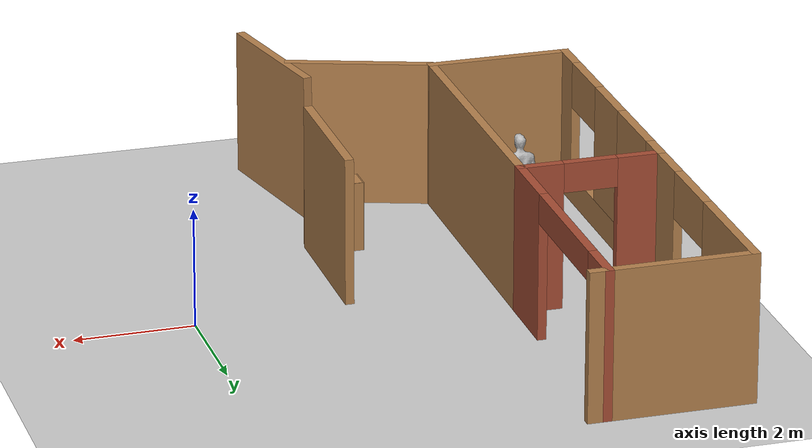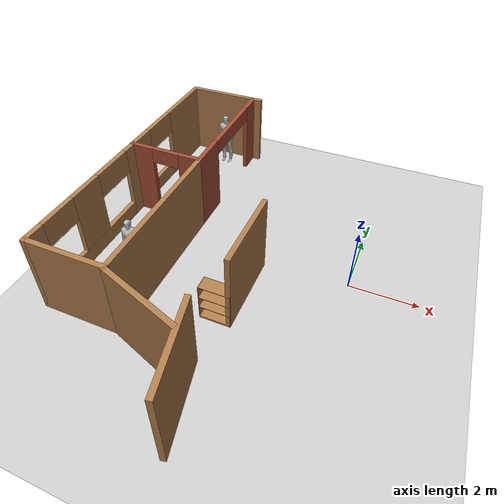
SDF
<sdf version="1.7">
 <world name="default">
  <model name="ground_plane">
   <static>1</static>
   <link name="link">
    <collision name="collision">
     <geometry><plane><normal>0 0 1</normal><size>100 100</size></plane></geometry>
     <surface><friction><ode><mu>100</mu><mu2>50</mu2></ode></friction></surface>
    </collision>
    <visual name="visual">
     <cast_shadows>0</cast_shadows>
     <geometry><plane><normal>0 0 1</normal><size>100 100</size></plane></geometry>
     <material>
      <script><uri>file://media/materials/scripts/gazebo.material</uri><name>Gazebo/Grey</name></script>
     </material>
    </visual>
   </link>
  </model>
  <model name="turtlebot3_house3">
   <link name="Wall_84">
    <pose>-6.2 5.275 0 0 -0 3.14159</pose>
    <visual name="Wall_84_Visual">
     <pose>0 0 1.25 0 -0 0</pose>
     <geometry><box><size>2.75 0.15 2.5</size></box></geometry>
     <material>
      <script><uri>file://media/materials/scripts/gazebo.material</uri><name>Gazebo/Wood</name></script>
      <ambient>1 1 1 1</ambient>
      <diffuse>1 1 1 1</diffuse>
      <specular>0.2 0.2 0.2 1</specular>
      <emissive>0 0 0 1</emissive>
      <shader type="pixel"/>
     </material>
    </visual>
    <collision name="Wall_84_Collision">
     <pose>0 0 1.25 0 -0 0</pose>
     <geometry><box><size>2.75 0.15 2.5</size></box></geometry>
     <surface>
      <friction>
       <ode><mu>1</mu><mu2>1</mu2><fdir1>0 0 0</fdir1><slip1>0</slip1><slip2>0</slip2></ode>
       <torsional>
        <coefficient>1</coefficient>
        <patch_radius>0</patch_radius>
        <surface_radius>0</surface_radius>
        <use_patch_radius>1</use_patch_radius>
        <ode><slip>0</slip></ode>
       </torsional>
      </friction>
      <bounce><restitution_coefficient>0</restitution_coefficient><threshold>1e+06</threshold></bounce>
      <contact>
       <collide_without_contact>0</collide_without_contact>
       <collide_without_contact_bitmask>1</collide_without_contact_bitmask>
       <collide_bitmask>1</collide_bitmask>
       <ode>
        <soft_cfm>0</soft_cfm>
        <soft_erp>0.2</soft_erp>
        <kp>1e+13</kp>
        <kd>1</kd>
        <max_vel>0.01</max_vel>
        <min_depth>0</min_depth>
       </ode>
       <bullet>
        <split_impulse>1</split_impulse>
        <split_impulse_penetration_threshold>-0.01</split_impulse_penetration_threshold>
        <soft_cfm>0</soft_cfm>
        <soft_erp>0.2</soft_erp>
        <kp>1e+13</kp>
        <kd>1</kd>
       </bullet>
      </contact>
     </surface>
    </collision>
   </link>
   <link name="Wall_85">
    <pose>-7.5 3.1 0 0 0 -1.5708</pose>
    <visual name="Wall_85_Visual_3">
     <pose>0.62212 0 2.1 0 -0 0</pose>
     <geometry><box><size>1.332 0.15 0.8</size></box></geometry>
     <material>
      <script><uri>file://media/materials/scripts/gazebo.material</uri><name>Gazebo/Wood</name></script>
      <ambient>1 1 1 1</ambient>
      <diffuse>1 1 1 1</diffuse>
      <specular>0.2 0.2 0.2 1</specular>
      <emissive>0 0 0 1</emissive>
      <shader type="pixel"/>
     </material>
    </visual>
    <visual name="Wall_85_Visual_0">
     <pose>-1.14694 0 1.25 0 -0 0</pose>
     <geometry><box><size>2.20612 0.15 2.5</size></box></geometry>
     <material>
      <script><uri>file://media/materials/scripts/gazebo.material</uri><name>Gazebo/Wood</name></script>
      <ambient>1 1 1 1</ambient>
      <diffuse>1 1 1 1</diffuse>
      <specular>0.2 0.2 0.2 1</specular>
      <emissive>0 0 0 1</emissive>
      <shader type="pixel"/>
     </material>
    </visual>
    <visual name="Wall_85_Visual_1">
     <pose>1.10306 0 0.25 0 -0 0</pose>
     <geometry><box><size>2.29388 0.15 0.5</size></box></geometry>
     <material>
      <script><uri>file://media/materials/scripts/gazebo.material</uri><name>Gazebo/Wood</name></script>
      <ambient>1 1 1 1</ambient>
      <diffuse>1 1 1 1</diffuse>
      <specular>0.2 0.2 0.2 1</specular>
      <emissive>0 0 0 1</emissive>
      <shader type="pixel"/>
     </material>
    </visual>
    <visual name="Wall_85_Visual_2">
     <pose>1.76906 0 1.5 0 -0 0</pose>
     <geometry><box><size>0.96188 0.15 2</size></box></geometry>
     <material>
      <script><uri>file://media/materials/scripts/gazebo.material</uri><name>Gazebo/Wood</name></script>
      <ambient>1 1 1 1</ambient>
      <diffuse>1 1 1 1</diffuse>
      <specular>0.2 0.2 0.2 1</specular>
      <emissive>0 0 0 1</emissive>
      <shader type="pixel"/>
     </material>
    </visual>
    <collision name="Wall_85_Collision_2">
     <pose>1.76906 0 1.5 0 -0 0</pose>
     <geometry><box><size>0.96188 0.15 2</size></box></geometry>
     <surface>
      <friction>
       <ode><mu>1</mu><mu2>1</mu2><fdir1>0 0 0</fdir1><slip1>0</slip1><slip2>0</slip2></ode>
       <torsional>
        <coefficient>1</coefficient>
        <patch_radius>0</patch_radius>
        <surface_radius>0</surface_radius>
        <use_patch_radius>1</use_patch_radius>
        <ode><slip>0</slip></ode>
       </torsional>
      </friction>
      <bounce><restitution_coefficient>0</restitution_coefficient><threshold>1e+06</threshold></bounce>
      <contact>
       <collide_without_contact>0</collide_without_contact>
       <collide_without_contact_bitmask>1</collide_without_contact_bitmask>
       <collide_bitmask>1</collide_bitmask>
       <ode>
        <soft_cfm>0</soft_cfm>
        <soft_erp>0.2</soft_erp>
        <kp>1e+13</kp>
        <kd>1</kd>
        <max_vel>0.01</max_vel>
        <min_depth>0</min_depth>
       </ode>
       <bullet>
        <split_impulse>1</split_impulse>
        <split_impulse_penetration_threshold>-0.01</split_impulse_penetration_threshold>
        <soft_cfm>0</soft_cfm>
        <soft_erp>0.2</soft_erp>
        <kp>1e+13</kp>
        <kd>1</kd>
       </bullet>
      </contact>
     </surface>
    </collision>
    <collision name="Wall_85_Collision_0">
     <pose>-1.14694 0 1.25 0 -0 0</pose>
     <geometry><box><size>2.20612 0.15 2.5</size></box></geometry>
     <surface>
      <friction>
       <ode><mu>1</mu><mu2>1</mu2><fdir1>0 0 0</fdir1><slip1>0</slip1><slip2>0</slip2></ode>
       <torsional>
        <coefficient>1</coefficient>
        <patch_radius>0</patch_radius>
        <surface_radius>0</surface_radius>
        <use_patch_radius>1</use_patch_radius>
        <ode><slip>0</slip></ode>
       </torsional>
      </friction>
      <bounce><restitution_coefficient>0</restitution_coefficient><threshold>1e+06</threshold></bounce>
      <contact>
       <collide_without_contact>0</collide_without_contact>
       <collide_without_contact_bitmask>1</collide_without_contact_bitmask>
       <collide_bitmask>1</collide_bitmask>
       <ode>
        <soft_cfm>0</soft_cfm>
        <soft_erp>0.2</soft_erp>
        <kp>1e+13</kp>
        <kd>1</kd>
        <max_vel>0.01</max_vel>
        <min_depth>0</min_depth>
       </ode>
       <bullet>
        <split_impulse>1</split_impulse>
        <split_impulse_penetration_threshold>-0.01</split_impulse_penetration_threshold>
        <soft_cfm>0</soft_cfm>
        <soft_erp>0.2</soft_erp>
        <kp>1e+13</kp>
        <kd>1</kd>
       </bullet>
      </contact>
     </surface>
    </collision>
    <collision name="Wall_85_Collision_3">
     <pose>0.62212 0 2.1 0 -0 0</pose>
     <geometry><box><size>1.332 0.15 0.8</size></box></geometry>
     <surface>
      <friction>
       <ode><mu>1</mu><mu2>1</mu2><fdir1>0 0 0</fdir1><slip1>0</slip1><slip2>0</slip2></ode>
       <torsional>
        <coefficient>1</coefficient>
        <patch_radius>0</patch_radius>
        <surface_radius>0</surface_radius>
        <use_patch_radius>1</use_patch_radius>
        <ode><slip>0</slip></ode>
       </torsional>
      </friction>
      <bounce><restitution_coefficient>0</restitution_coefficient><threshold>1e+06</threshold></bounce>
      <contact>
       <collide_without_contact>0</collide_without_contact>
       <collide_without_contact_bitmask>1</collide_without_contact_bitmask>
       <collide_bitmask>1</collide_bitmask>
       <ode>
        <soft_cfm>0</soft_cfm>
        <soft_erp>0.2</soft_erp>
        <kp>1e+13</kp>
        <kd>1</kd>
        <max_vel>0.01</max_vel>
        <min_depth>0</min_depth>
       </ode>
       <bullet>
        <split_impulse>1</split_impulse>
        <split_impulse_penetration_threshold>-0.01</split_impulse_penetration_threshold>
        <soft_cfm>0</soft_cfm>
        <soft_erp>0.2</soft_erp>
        <kp>1e+13</kp>
        <kd>1</kd>
       </bullet>
      </contact>
     </surface>
    </collision>
    <collision name="Wall_85_Collision_1">
     <pose>1.10306 0 0.25 0 -0 0</pose>
     <geometry><box><size>2.29388 0.15 0.5</size></box></geometry>
     <surface>
      <friction>
       <ode><mu>1</mu><mu2>1</mu2><fdir1>0 0 0</fdir1><slip1>0</slip1><slip2>0</slip2></ode>
       <torsional>
        <coefficient>1</coefficient>
        <patch_radius>0</patch_radius>
        <surface_radius>0</surface_radius>
        <use_patch_radius>1</use_patch_radius>
        <ode><slip>0</slip></ode>
       </torsional>
      </friction>
      <bounce><restitution_coefficient>0</restitution_coefficient><threshold>1e+06</threshold></bounce>
      <contact>
       <collide_without_contact>0</collide_without_contact>
       <collide_without_contact_bitmask>1</collide_without_contact_bitmask>
       <collide_bitmask>1</collide_bitmask>
       <ode>
        <soft_cfm>0</soft_cfm>
        <soft_erp>0.2</soft_erp>
        <kp>1e+13</kp>
        <kd>1</kd>
        <max_vel>0.01</max_vel>
        <min_depth>0</min_depth>
       </ode>
       <bullet>
        <split_impulse>1</split_impulse>
        <split_impulse_penetration_threshold>-0.01</split_impulse_penetration_threshold>
        <soft_cfm>0</soft_cfm>
        <soft_erp>0.2</soft_erp>
        <kp>1e+13</kp>
        <kd>1</kd>
       </bullet>
      </contact>
     </surface>
    </collision>
   </link>
   <link name="Wall_86">
    <pose>-7.5 -1.5 0 0 0 -1.5708</pose>
    <visual name="Wall_86_Visual_3">
     <pose>2.16098 0 1.5 0 -0 0</pose>
     <geometry><box><size>0.678041 0.15 2</size></box></geometry>
     <material>
      <script><uri>file://media/materials/scripts/gazebo.material</uri><name>Gazebo/Wood</name></script>
      <ambient>1 1 1 1</ambient>
      <diffuse>1 1 1 1</diffuse>
      <specular>0.2 0.2 0.2 1</specular>
      <emissive>0 0 0 1</emissive>
      <shader type="pixel"/>
     </material>
    </visual>
    <visual name="Wall_86_Visual_5">
     <pose>1.22246 0 2.1 0 -0 0</pose>
     <geometry><box><size>1.199 0.15 0.8</size></box></geometry>
     <material>
      <script><uri>file://media/materials/scripts/gazebo.material</uri><name>Gazebo/Wood</name></script>
      <ambient>1 1 1 1</ambient>
      <diffuse>1 1 1 1</diffuse>
      <specular>0.2 0.2 0.2 1</specular>
      <emissive>0 0 0 1</emissive>
      <shader type="pixel"/>
     </material>
    </visual>
    <visual name="Wall_86_Visual_0">
     <pose>-2.21538 0 1.25 0 -0 0</pose>
     <geometry><box><size>0.569241 0.15 2.5</size></box></geometry>
     <material>
      <script><uri>file://media/materials/scripts/gazebo.material</uri><name>Gazebo/Wood</name></script>
      <ambient>1 1 1 1</ambient>
      <diffuse>1 1 1 1</diffuse>
      <specular>0.2 0.2 0.2 1</specular>
      <emissive>0 0 0 1</emissive>
      <shader type="pixel"/>
     </material>
    </visual>
    <visual name="Wall_86_Visual_2">
     <pose>0.0521 0 1.5 0 -0 0</pose>
     <geometry><box><size>1.14172 0.15 2</size></box></geometry>
     <material>
      <script><uri>file://media/materials/scripts/gazebo.material</uri><name>Gazebo/Wood</name></script>
      <ambient>1 1 1 1</ambient>
      <diffuse>1 1 1 1</diffuse>
      <specular>0.2 0.2 0.2 1</specular>
      <emissive>0 0 0 1</emissive>
      <shader type="pixel"/>
     </material>
    </visual>
    <visual name="Wall_86_Visual_4">
     <pose>-1.22476 0 2.1 0 -0 0</pose>
     <geometry><box><size>1.412 0.15 0.8</size></box></geometry>
     <material>
      <script><uri>file://media/materials/scripts/gazebo.material</uri><name>Gazebo/Wood</name></script>
      <ambient>1 1 1 1</ambient>
      <diffuse>1 1 1 1</diffuse>
      <specular>0.2 0.2 0.2 1</specular>
      <emissive>0 0 0 1</emissive>
      <shader type="pixel"/>
     </material>
    </visual>
    <visual name="Wall_86_Visual_1">
     <pose>0.28462 0 0.25 0 -0 0</pose>
     <geometry><box><size>4.43076 0.15 0.5</size></box></geometry>
     <material>
      <script><uri>file://media/materials/scripts/gazebo.material</uri><name>Gazebo/Wood</name></script>
      <ambient>1 1 1 1</ambient>
      <diffuse>1 1 1 1</diffuse>
      <specular>0.2 0.2 0.2 1</specular>
      <emissive>0 0 0 1</emissive>
      <shader type="pixel"/>
     </material>
    </visual>
    <collision name="Wall_86_Collision_3">
     <pose>2.16098 0 1.5 0 -0 0</pose>
     <geometry><box><size>0.678041 0.15 2</size></box></geometry>
     <surface>
      <friction>
       <ode><mu>1</mu><mu2>1</mu2><fdir1>0 0 0</fdir1><slip1>0</slip1><slip2>0</slip2></ode>
       <torsional>
        <coefficient>1</coefficient>
        <patch_radius>0</patch_radius>
        <surface_radius>0</surface_radius>
        <use_patch_radius>1</use_patch_radius>
        <ode><slip>0</slip></ode>
       </torsional>
      </friction>
      <bounce><restitution_coefficient>0</restitution_coefficient><threshold>1e+06</threshold></bounce>
      <contact>
       <collide_without_contact>0</collide_without_contact>
       <collide_without_contact_bitmask>1</collide_without_contact_bitmask>
       <collide_bitmask>1</collide_bitmask>
       <ode>
        <soft_cfm>0</soft_cfm>
        <soft_erp>0.2</soft_erp>
        <kp>1e+13</kp>
        <kd>1</kd>
        <max_vel>0.01</max_vel>
        <min_depth>0</min_depth>
       </ode>
       <bullet>
        <split_impulse>1</split_impulse>
        <split_impulse_penetration_threshold>-0.01</split_impulse_penetration_threshold>
        <soft_cfm>0</soft_cfm>
        <soft_erp>0.2</soft_erp>
        <kp>1e+13</kp>
        <kd>1</kd>
       </bullet>
      </contact>
     </surface>
    </collision>
    <collision name="Wall_86_Collision_4">
     <pose>-1.22476 0 2.1 0 -0 0</pose>
     <geometry><box><size>1.412 0.15 0.8</size></box></geometry>
     <surface>
      <friction>
       <ode><mu>1</mu><mu2>1</mu2><fdir1>0 0 0</fdir1><slip1>0</slip1><slip2>0</slip2></ode>
       <torsional>
        <coefficient>1</coefficient>
        <patch_radius>0</patch_radius>
        <surface_radius>0</surface_radius>
        <use_patch_radius>1</use_patch_radius>
        <ode><slip>0</slip></ode>
       </torsional>
      </friction>
      <bounce><restitution_coefficient>0</restitution_coefficient><threshold>1e+06</threshold></bounce>
      <contact>
       <collide_without_contact>0</collide_without_contact>
       <collide_without_contact_bitmask>1</collide_without_contact_bitmask>
       <collide_bitmask>1</collide_bitmask>
       <ode>
        <soft_cfm>0</soft_cfm>
        <soft_erp>0.2</soft_erp>
        <kp>1e+13</kp>
        <kd>1</kd>
        <max_vel>0.01</max_vel>
        <min_depth>0</min_depth>
       </ode>
       <bullet>
        <split_impulse>1</split_impulse>
        <split_impulse_penetration_threshold>-0.01</split_impulse_penetration_threshold>
        <soft_cfm>0</soft_cfm>
        <soft_erp>0.2</soft_erp>
        <kp>1e+13</kp>
        <kd>1</kd>
       </bullet>
      </contact>
     </surface>
    </collision>
    <collision name="Wall_86_Collision_5">
     <pose>1.22246 0 2.1 0 -0 0</pose>
     <geometry><box><size>1.199 0.15 0.8</size></box></geometry>
     <surface>
      <friction>
       <ode><mu>1</mu><mu2>1</mu2><fdir1>0 0 0</fdir1><slip1>0</slip1><slip2>0</slip2></ode>
       <torsional>
        <coefficient>1</coefficient>
        <patch_radius>0</patch_radius>
        <surface_radius>0</surface_radius>
        <use_patch_radius>1</use_patch_radius>
        <ode><slip>0</slip></ode>
       </torsional>
      </friction>
      <bounce><restitution_coefficient>0</restitution_coefficient><threshold>1e+06</threshold></bounce>
      <contact>
       <collide_without_contact>0</collide_without_contact>
       <collide_without_contact_bitmask>1</collide_without_contact_bitmask>
       <collide_bitmask>1</collide_bitmask>
       <ode>
        <soft_cfm>0</soft_cfm>
        <soft_erp>0.2</soft_erp>
        <kp>1e+13</kp>
        <kd>1</kd>
        <max_vel>0.01</max_vel>
        <min_depth>0</min_depth>
       </ode>
       <bullet>
        <split_impulse>1</split_impulse>
        <split_impulse_penetration_threshold>-0.01</split_impulse_penetration_threshold>
        <soft_cfm>0</soft_cfm>
        <soft_erp>0.2</soft_erp>
        <kp>1e+13</kp>
        <kd>1</kd>
       </bullet>
      </contact>
     </surface>
    </collision>
    <collision name="Wall_86_Collision_2">
     <pose>0.0521 0 1.5 0 -0 0</pose>
     <geometry><box><size>1.14172 0.15 2</size></box></geometry>
     <surface>
      <friction>
       <ode><mu>1</mu><mu2>1</mu2><fdir1>0 0 0</fdir1><slip1>0</slip1><slip2>0</slip2></ode>
       <torsional>
        <coefficient>1</coefficient>
        <patch_radius>0</patch_radius>
        <surface_radius>0</surface_radius>
        <use_patch_radius>1</use_patch_radius>
        <ode><slip>0</slip></ode>
       </torsional>
      </friction>
      <bounce><restitution_coefficient>0</restitution_coefficient><threshold>1e+06</threshold></bounce>
      <contact>
       <collide_without_contact>0</collide_without_contact>
       <collide_without_contact_bitmask>1</collide_without_contact_bitmask>
       <collide_bitmask>1</collide_bitmask>
       <ode>
        <soft_cfm>0</soft_cfm>
        <soft_erp>0.2</soft_erp>
        <kp>1e+13</kp>
        <kd>1</kd>
        <max_vel>0.01</max_vel>
        <min_depth>0</min_depth>
       </ode>
       <bullet>
        <split_impulse>1</split_impulse>
        <split_impulse_penetration_threshold>-0.01</split_impulse_penetration_threshold>
        <soft_cfm>0</soft_cfm>
        <soft_erp>0.2</soft_erp>
        <kp>1e+13</kp>
        <kd>1</kd>
       </bullet>
      </contact>
     </surface>
    </collision>
    <collision name="Wall_86_Collision_1">
     <pose>0.28462 0 0.25 0 -0 0</pose>
     <geometry><box><size>4.43076 0.15 0.5</size></box></geometry>
     <surface>
      <friction>
       <ode><mu>1</mu><mu2>1</mu2><fdir1>0 0 0</fdir1><slip1>0</slip1><slip2>0</slip2></ode>
       <torsional>
        <coefficient>1</coefficient>
        <patch_radius>0</patch_radius>
        <surface_radius>0</surface_radius>
        <use_patch_radius>1</use_patch_radius>
        <ode><slip>0</slip></ode>
       </torsional>
      </friction>
      <bounce><restitution_coefficient>0</restitution_coefficient><threshold>1e+06</threshold></bounce>
      <contact>
       <collide_without_contact>0</collide_without_contact>
       <collide_without_contact_bitmask>1</collide_without_contact_bitmask>
       <collide_bitmask>1</collide_bitmask>
       <ode>
        <soft_cfm>0</soft_cfm>
        <soft_erp>0.2</soft_erp>
        <kp>1e+13</kp>
        <kd>1</kd>
        <max_vel>0.01</max_vel>
        <min_depth>0</min_depth>
       </ode>
       <bullet>
        <split_impulse>1</split_impulse>
        <split_impulse_penetration_threshold>-0.01</split_impulse_penetration_threshold>
        <soft_cfm>0</soft_cfm>
        <soft_erp>0.2</soft_erp>
        <kp>1e+13</kp>
        <kd>1</kd>
       </bullet>
      </contact>
     </surface>
    </collision>
    <collision name="Wall_86_Collision_0">
     <pose>-2.21538 0 1.25 0 -0 0</pose>
     <geometry><box><size>0.569241 0.15 2.5</size></box></geometry>
     <surface>
      <friction>
       <ode><mu>1</mu><mu2>1</mu2><fdir1>0 0 0</fdir1><slip1>0</slip1><slip2>0</slip2></ode>
       <torsional>
        <coefficient>1</coefficient>
        <patch_radius>0</patch_radius>
        <surface_radius>0</surface_radius>
        <use_patch_radius>1</use_patch_radius>
        <ode><slip>0</slip></ode>
       </torsional>
      </friction>
      <bounce><restitution_coefficient>0</restitution_coefficient><threshold>1e+06</threshold></bounce>
      <contact>
       <collide_without_contact>0</collide_without_contact>
       <collide_without_contact_bitmask>1</collide_without_contact_bitmask>
       <collide_bitmask>1</collide_bitmask>
       <ode>
        <soft_cfm>0</soft_cfm>
        <soft_erp>0.2</soft_erp>
        <kp>1e+13</kp>
        <kd>1</kd>
        <max_vel>0.01</max_vel>
        <min_depth>0</min_depth>
       </ode>
       <bullet>
        <split_impulse>1</split_impulse>
        <split_impulse_penetration_threshold>-0.01</split_impulse_penetration_threshold>
        <soft_cfm>0</soft_cfm>
        <soft_erp>0.2</soft_erp>
        <kp>1e+13</kp>
        <kd>1</kd>
       </bullet>
      </contact>
     </surface>
    </collision>
   </link>
   <link name="Wall_87">
    <pose>-6.325 -3.925 0 0 -0 0</pose>
    <visual name="Wall_87_Visual">
     <pose>0 0 1.25 0 -0 0</pose>
     <geometry><box><size>2.5 0.15 2.5</size></box></geometry>
     <material>
      <script><uri>file://media/materials/scripts/gazebo.material</uri><name>Gazebo/Wood</name></script>
      <ambient>1 1 1 1</ambient>
      <diffuse>1 1 1 1</diffuse>
      <specular>0.2 0.2 0.2 1</specular>
      <emissive>0 0 0 1</emissive>
      <shader type="pixel"/>
     </material>
    </visual>
    <collision name="Wall_87_Collision">
     <pose>0 0 1.25 0 -0 0</pose>
     <geometry><box><size>2.5 0.15 2.5</size></box></geometry>
     <surface>
      <friction>
       <ode><mu>1</mu><mu2>1</mu2><fdir1>0 0 0</fdir1><slip1>0</slip1><slip2>0</slip2></ode>
       <torsional>
        <coefficient>1</coefficient>
        <patch_radius>0</patch_radius>
        <surface_radius>0</surface_radius>
        <use_patch_radius>1</use_patch_radius>
        <ode><slip>0</slip></ode>
       </torsional>
      </friction>
      <bounce><restitution_coefficient>0</restitution_coefficient><threshold>1e+06</threshold></bounce>
      <contact>
       <collide_without_contact>0</collide_without_contact>
       <collide_without_contact_bitmask>1</collide_without_contact_bitmask>
       <collide_bitmask>1</collide_bitmask>
       <ode>
        <soft_cfm>0</soft_cfm>
        <soft_erp>0.2</soft_erp>
        <kp>1e+13</kp>
        <kd>1</kd>
        <max_vel>0.01</max_vel>
        <min_depth>0</min_depth>
       </ode>
       <bullet>
        <split_impulse>1</split_impulse>
        <split_impulse_penetration_threshold>-0.01</split_impulse_penetration_threshold>
        <soft_cfm>0</soft_cfm>
        <soft_erp>0.2</soft_erp>
        <kp>1e+13</kp>
        <kd>1</kd>
       </bullet>
      </contact>
     </surface>
    </collision>
   </link>
   <link name="Wall_87_clone">
    <pose>-4.00034 -4.35157 0 0 0 -0.331185</pose>
    <visual name="Wall_87_Visual">
     <pose>0 0 1.25 0 -0 0</pose>
     <geometry><box><size>2.5 0.15 2.5</size></box></geometry>
     <material>
      <script><uri>file://media/materials/scripts/gazebo.material</uri><name>Gazebo/Wood</name></script>
      <ambient>1 1 1 1</ambient>
      <diffuse>1 1 1 1</diffuse>
      <specular>0.2 0.2 0.2 1</specular>
      <emissive>0 0 0 1</emissive>
      <shader type="pixel"/>
     </material>
    </visual>
    <collision name="Wall_87_Collision">
     <pose>0 0 1.25 0 -0 0</pose>
     <geometry><box><size>2.5 0.15 2.5</size></box></geometry>
     <surface>
      <friction>
       <ode><mu>1</mu><mu2>1</mu2><fdir1>0 0 0</fdir1><slip1>0</slip1><slip2>0</slip2></ode>
       <torsional>
        <coefficient>1</coefficient>
        <patch_radius>0</patch_radius>
        <surface_radius>0</surface_radius>
        <use_patch_radius>1</use_patch_radius>
        <ode><slip>0</slip></ode>
       </torsional>
      </friction>
      <bounce><restitution_coefficient>0</restitution_coefficient><threshold>1e+06</threshold></bounce>
      <contact>
       <collide_without_contact>0</collide_without_contact>
       <collide_without_contact_bitmask>1</collide_without_contact_bitmask>
       <collide_bitmask>1</collide_bitmask>
       <ode>
        <soft_cfm>0</soft_cfm>
        <soft_erp>0.2</soft_erp>
        <kp>1e+13</kp>
        <kd>1</kd>
        <max_vel>0.01</max_vel>
        <min_depth>0</min_depth>
       </ode>
       <bullet>
        <split_impulse>1</split_impulse>
        <split_impulse_penetration_threshold>-0.01</split_impulse_penetration_threshold>
        <soft_cfm>0</soft_cfm>
        <soft_erp>0.2</soft_erp>
        <kp>1e+13</kp>
        <kd>1</kd>
       </bullet>
      </contact>
     </surface>
    </collision>
   </link>
   <link name="Wall_87_clone_clone">
    <pose>-2.63211 -1.37717 0 0 0 -1.57423</pose>
    <visual name="Wall_87_Visual">
     <pose>0 0 1.25 0 -0 0</pose>
     <geometry><box><size>2.5 0.15 2.5</size></box></geometry>
     <material>
      <script><uri>file://media/materials/scripts/gazebo.material</uri><name>Gazebo/Wood</name></script>
      <ambient>1 1 1 1</ambient>
      <diffuse>1 1 1 1</diffuse>
      <specular>0.2 0.2 0.2 1</specular>
      <emissive>0 0 0 1</emissive>
      <shader type="pixel"/>
     </material>
    </visual>
    <collision name="Wall_87_Collision">
     <pose>0 0 1.25 0 -0 0</pose>
     <geometry><box><size>2.5 0.15 2.5</size></box></geometry>
     <surface>
      <friction>
       <ode><mu>1</mu><mu2>1</mu2><fdir1>0 0 0</fdir1><slip1>0</slip1><slip2>0</slip2></ode>
       <torsional>
        <coefficient>1</coefficient>
        <patch_radius>0</patch_radius>
        <surface_radius>0</surface_radius>
        <use_patch_radius>1</use_patch_radius>
        <ode><slip>0</slip></ode>
       </torsional>
      </friction>
      <bounce><restitution_coefficient>0</restitution_coefficient><threshold>1e+06</threshold></bounce>
      <contact>
       <collide_without_contact>0</collide_without_contact>
       <collide_without_contact_bitmask>1</collide_without_contact_bitmask>
       <collide_bitmask>1</collide_bitmask>
       <ode>
        <soft_cfm>0</soft_cfm>
        <soft_erp>0.2</soft_erp>
        <kp>1e+13</kp>
        <kd>1</kd>
        <max_vel>0.01</max_vel>
        <min_depth>0</min_depth>
       </ode>
       <bullet>
        <split_impulse>1</split_impulse>
        <split_impulse_penetration_threshold>-0.01</split_impulse_penetration_threshold>
        <soft_cfm>0</soft_cfm>
        <soft_erp>0.2</soft_erp>
        <kp>1e+13</kp>
        <kd>1</kd>
       </bullet>
      </contact>
     </surface>
    </collision>
   </link>
   <link name="Wall_87_clone_clone_0">
    <pose>-2.7265 -5.11897 0 0 0 -1.36485</pose>
    <visual name="Wall_87_Visual">
     <pose>0 0 1.25 0 -0 0</pose>
     <geometry><box><size>2.5 0.15 2.5</size></box></geometry>
     <material>
      <script><uri>file://media/materials/scripts/gazebo.material</uri><name>Gazebo/Wood</name></script>
      <ambient>1 1 1 1</ambient>
      <diffuse>1 1 1 1</diffuse>
      <specular>0.2 0.2 0.2 1</specular>
      <emissive>0 0 0 1</emissive>
      <shader type="pixel"/>
     </material>
    </visual>
    <collision name="Wall_87_Collision">
     <pose>0 0 1.25 0 -0 0</pose>
     <geometry><box><size>2.5 0.15 2.5</size></box></geometry>
     <surface>
      <friction>
       <ode><mu>1</mu><mu2>1</mu2><fdir1>0 0 0</fdir1><slip1>0</slip1><slip2>0</slip2></ode>
       <torsional>
        <coefficient>1</coefficient>
        <patch_radius>0</patch_radius>
        <surface_radius>0</surface_radius>
        <use_patch_radius>1</use_patch_radius>
        <ode><slip>0</slip></ode>
       </torsional>
      </friction>
      <bounce><restitution_coefficient>0</restitution_coefficient><threshold>1e+06</threshold></bounce>
      <contact>
       <collide_without_contact>0</collide_without_contact>
       <collide_without_contact_bitmask>1</collide_without_contact_bitmask>
       <collide_bitmask>1</collide_bitmask>
       <ode>
        <soft_cfm>0</soft_cfm>
        <soft_erp>0.2</soft_erp>
        <kp>1e+13</kp>
        <kd>1</kd>
        <max_vel>0.01</max_vel>
        <min_depth>0</min_depth>
       </ode>
       <bullet>
        <split_impulse>1</split_impulse>
        <split_impulse_penetration_threshold>-0.01</split_impulse_penetration_threshold>
        <soft_cfm>0</soft_cfm>
        <soft_erp>0.2</soft_erp>
        <kp>1e+13</kp>
        <kd>1</kd>
       </bullet>
      </contact>
     </surface>
    </collision>
   </link>
   <link name="Wall_88">
    <pose>-5.15151 -1.49625 0 0 -0 1.5708</pose>
    <visual name="Wall_88_Visual">
     <pose>0 0 1.25 0 -0 0</pose>
     <geometry><box><size>5 0.15 2.5</size></box></geometry>
     <material>
      <script><uri>file://media/materials/scripts/gazebo.material</uri><name>Gazebo/Wood</name></script>
      <ambient>1 1 1 1</ambient>
      <diffuse>1 1 1 1</diffuse>
      <specular>0.2 0.2 0.2 1</specular>
      <emissive>0 0 0 1</emissive>
      <shader type="pixel"/>
     </material>
    </visual>
    <collision name="Wall_88_Collision">
     <pose>0 0 1.25 0 -0 0</pose>
     <geometry><box><size>5 0.15 2.5</size></box></geometry>
     <surface>
      <friction>
       <ode><mu>1</mu><mu2>1</mu2><fdir1>0 0 0</fdir1><slip1>0</slip1><slip2>0</slip2></ode>
       <torsional>
        <coefficient>1</coefficient>
        <patch_radius>0</patch_radius>
        <surface_radius>0</surface_radius>
        <use_patch_radius>1</use_patch_radius>
        <ode><slip>0</slip></ode>
       </torsional>
      </friction>
      <bounce><restitution_coefficient>0</restitution_coefficient><threshold>1e+06</threshold></bounce>
      <contact>
       <collide_without_contact>0</collide_without_contact>
       <collide_without_contact_bitmask>1</collide_without_contact_bitmask>
       <collide_bitmask>1</collide_bitmask>
       <ode>
        <soft_cfm>0</soft_cfm>
        <soft_erp>0.2</soft_erp>
        <kp>1e+13</kp>
        <kd>1</kd>
        <max_vel>0.01</max_vel>
        <min_depth>0</min_depth>
       </ode>
       <bullet>
        <split_impulse>1</split_impulse>
        <split_impulse_penetration_threshold>-0.01</split_impulse_penetration_threshold>
        <soft_cfm>0</soft_cfm>
        <soft_erp>0.2</soft_erp>
        <kp>1e+13</kp>
        <kd>1</kd>
       </bullet>
      </contact>
     </surface>
    </collision>
   </link>
   <link name="Wall_98">
    <pose>-6.325 0.925 0 0 -0 0</pose>
    <visual name="Wall_98_Visual_0">
     <pose>-0.842111 0 1.25 0 -0 0</pose>
     <geometry><box><size>0.815777 0.15 2.5</size></box></geometry>
     <material>
      <script><uri>file://media/materials/scripts/gazebo.material</uri><name>Gazebo/Bricks</name></script>
      <ambient>1 1 1 1</ambient>
      <diffuse>1 1 1 1</diffuse>
      <specular>0.2 0.2 0.2 1</specular>
      <emissive>0 0 0 1</emissive>
      <shader type="pixel"/>
     </material>
    </visual>
    <visual name="Wall_98_Visual_2">
     <pose>0.015777 0 2.25 0 -0 0</pose>
     <geometry><box><size>0.9 0.15 0.5</size></box></geometry>
     <material>
      <script><uri>file://media/materials/scripts/gazebo.material</uri><name>Gazebo/Bricks</name></script>
      <ambient>1 1 1 1</ambient>
      <diffuse>1 1 1 1</diffuse>
      <specular>0.2 0.2 0.2 1</specular>
      <emissive>0 0 0 1</emissive>
      <shader type="pixel"/>
     </material>
    </visual>
    <visual name="Wall_98_Visual_1">
     <pose>0.857889 0 1.25 0 -0 0</pose>
     <geometry><box><size>0.784223 0.15 2.5</size></box></geometry>
     <material>
      <script><uri>file://media/materials/scripts/gazebo.material</uri><name>Gazebo/Bricks</name></script>
      <ambient>1 1 1 1</ambient>
      <diffuse>1 1 1 1</diffuse>
      <specular>0.2 0.2 0.2 1</specular>
      <emissive>0 0 0 1</emissive>
      <shader type="pixel"/>
     </material>
    </visual>
    <collision name="Wall_98_Collision_2">
     <pose>0.015777 0 2.25 0 -0 0</pose>
     <geometry><box><size>0.9 0.15 0.5</size></box></geometry>
     <surface>
      <friction>
       <ode><mu>1</mu><mu2>1</mu2><fdir1>0 0 0</fdir1><slip1>0</slip1><slip2>0</slip2></ode>
       <torsional>
        <coefficient>1</coefficient>
        <patch_radius>0</patch_radius>
        <surface_radius>0</surface_radius>
        <use_patch_radius>1</use_patch_radius>
        <ode><slip>0</slip></ode>
       </torsional>
      </friction>
      <bounce><restitution_coefficient>0</restitution_coefficient><threshold>1e+06</threshold></bounce>
      <contact>
       <collide_without_contact>0</collide_without_contact>
       <collide_without_contact_bitmask>1</collide_without_contact_bitmask>
       <collide_bitmask>1</collide_bitmask>
       <ode>
        <soft_cfm>0</soft_cfm>
        <soft_erp>0.2</soft_erp>
        <kp>1e+13</kp>
        <kd>1</kd>
        <max_vel>0.01</max_vel>
        <min_depth>0</min_depth>
       </ode>
       <bullet>
        <split_impulse>1</split_impulse>
        <split_impulse_penetration_threshold>-0.01</split_impulse_penetration_threshold>
        <soft_cfm>0</soft_cfm>
        <soft_erp>0.2</soft_erp>
        <kp>1e+13</kp>
        <kd>1</kd>
       </bullet>
      </contact>
     </surface>
    </collision>
    <collision name="Wall_98_Collision_0">
     <pose>-0.842111 0 1.25 0 -0 0</pose>
     <geometry><box><size>0.815777 0.15 2.5</size></box></geometry>
     <surface>
      <friction>
       <ode><mu>1</mu><mu2>1</mu2><fdir1>0 0 0</fdir1><slip1>0</slip1><slip2>0</slip2></ode>
       <torsional>
        <coefficient>1</coefficient>
        <patch_radius>0</patch_radius>
        <surface_radius>0</surface_radius>
        <use_patch_radius>1</use_patch_radius>
        <ode><slip>0</slip></ode>
       </torsional>
      </friction>
      <bounce><restitution_coefficient>0</restitution_coefficient><threshold>1e+06</threshold></bounce>
      <contact>
       <collide_without_contact>0</collide_without_contact>
       <collide_without_contact_bitmask>1</collide_without_contact_bitmask>
       <collide_bitmask>1</collide_bitmask>
       <ode>
        <soft_cfm>0</soft_cfm>
        <soft_erp>0.2</soft_erp>
        <kp>1e+13</kp>
        <kd>1</kd>
        <max_vel>0.01</max_vel>
        <min_depth>0</min_depth>
       </ode>
       <bullet>
        <split_impulse>1</split_impulse>
        <split_impulse_penetration_threshold>-0.01</split_impulse_penetration_threshold>
        <soft_cfm>0</soft_cfm>
        <soft_erp>0.2</soft_erp>
        <kp>1e+13</kp>
        <kd>1</kd>
       </bullet>
      </contact>
     </surface>
    </collision>
    <collision name="Wall_98_Collision_1">
     <pose>0.857889 0 1.25 0 -0 0</pose>
     <geometry><box><size>0.784223 0.15 2.5</size></box></geometry>
     <surface>
      <friction>
       <ode><mu>1</mu><mu2>1</mu2><fdir1>0 0 0</fdir1><slip1>0</slip1><slip2>0</slip2></ode>
       <torsional>
        <coefficient>1</coefficient>
        <patch_radius>0</patch_radius>
        <surface_radius>0</surface_radius>
        <use_patch_radius>1</use_patch_radius>
        <ode><slip>0</slip></ode>
       </torsional>
      </friction>
      <bounce><restitution_coefficient>0</restitution_coefficient><threshold>1e+06</threshold></bounce>
      <contact>
       <collide_without_contact>0</collide_without_contact>
       <collide_without_contact_bitmask>1</collide_without_contact_bitmask>
       <collide_bitmask>1</collide_bitmask>
       <ode>
        <soft_cfm>0</soft_cfm>
        <soft_erp>0.2</soft_erp>
        <kp>1e+13</kp>
        <kd>1</kd>
        <max_vel>0.01</max_vel>
        <min_depth>0</min_depth>
       </ode>
       <bullet>
        <split_impulse>1</split_impulse>
        <split_impulse_penetration_threshold>-0.01</split_impulse_penetration_threshold>
        <soft_cfm>0</soft_cfm>
        <soft_erp>0.2</soft_erp>
        <kp>1e+13</kp>
        <kd>1</kd>
       </bullet>
      </contact>
     </surface>
    </collision>
   </link>
   <link name="Wall_99">
    <pose>-5.15 3.1 0 0 -0 1.5708</pose>
    <visual name="Wall_99_Visual_1">
     <pose>1.83695 0 1.25 0 -0 0</pose>
     <geometry><box><size>0.826108 0.15 2.5</size></box></geometry>
     <material>
      <script><uri>file://media/materials/scripts/gazebo.material</uri><name>Gazebo/Bricks</name></script>
      <ambient>1 1 1 1</ambient>
      <diffuse>1 1 1 1</diffuse>
      <specular>0.2 0.2 0.2 1</specular>
      <emissive>0 0 0 1</emissive>
      <shader type="pixel"/>
     </material>
    </visual>
    <visual name="Wall_99_Visual_2">
     <pose>0.215786 0 2.25 0 -0 0</pose>
     <geometry><box><size>2.41621 0.15 0.5</size></box></geometry>
     <material>
      <script><uri>file://media/materials/scripts/gazebo.material</uri><name>Gazebo/Bricks</name></script>
      <ambient>1 1 1 1</ambient>
      <diffuse>1 1 1 1</diffuse>
      <specular>0.2 0.2 0.2 1</specular>
      <emissive>0 0 0 1</emissive>
      <shader type="pixel"/>
     </material>
    </visual>
    <visual name="Wall_99_Visual_0">
     <pose>-1.62116 0 1.25 0 -0 0</pose>
     <geometry><box><size>1.25768 0.15 2.5</size></box></geometry>
     <material>
      <script><uri>file://media/materials/scripts/gazebo.material</uri><name>Gazebo/Bricks</name></script>
      <ambient>1 1 1 1</ambient>
      <diffuse>1 1 1 1</diffuse>
      <specular>0.2 0.2 0.2 1</specular>
      <emissive>0 0 0 1</emissive>
      <shader type="pixel"/>
     </material>
    </visual>
    <collision name="Wall_99_Collision_1">
     <pose>1.83695 0 1.25 0 -0 0</pose>
     <geometry><box><size>0.826108 0.15 2.5</size></box></geometry>
     <surface>
      <friction>
       <ode><mu>1</mu><mu2>1</mu2><fdir1>0 0 0</fdir1><slip1>0</slip1><slip2>0</slip2></ode>
       <torsional>
        <coefficient>1</coefficient>
        <patch_radius>0</patch_radius>
        <surface_radius>0</surface_radius>
        <use_patch_radius>1</use_patch_radius>
        <ode><slip>0</slip></ode>
       </torsional>
      </friction>
      <bounce><restitution_coefficient>0</restitution_coefficient><threshold>1e+06</threshold></bounce>
      <contact>
       <collide_without_contact>0</collide_without_contact>
       <collide_without_contact_bitmask>1</collide_without_contact_bitmask>
       <collide_bitmask>1</collide_bitmask>
       <ode>
        <soft_cfm>0</soft_cfm>
        <soft_erp>0.2</soft_erp>
        <kp>1e+13</kp>
        <kd>1</kd>
        <max_vel>0.01</max_vel>
        <min_depth>0</min_depth>
       </ode>
       <bullet>
        <split_impulse>1</split_impulse>
        <split_impulse_penetration_threshold>-0.01</split_impulse_penetration_threshold>
        <soft_cfm>0</soft_cfm>
        <soft_erp>0.2</soft_erp>
        <kp>1e+13</kp>
        <kd>1</kd>
       </bullet>
      </contact>
     </surface>
    </collision>
    <collision name="Wall_99_Collision_2">
     <pose>0.215786 0 2.25 0 -0 0</pose>
     <geometry><box><size>2.41621 0.15 0.5</size></box></geometry>
     <surface>
      <friction>
       <ode><mu>1</mu><mu2>1</mu2><fdir1>0 0 0</fdir1><slip1>0</slip1><slip2>0</slip2></ode>
       <torsional>
        <coefficient>1</coefficient>
        <patch_radius>0</patch_radius>
        <surface_radius>0</surface_radius>
        <use_patch_radius>1</use_patch_radius>
        <ode><slip>0</slip></ode>
       </torsional>
      </friction>
      <bounce><restitution_coefficient>0</restitution_coefficient><threshold>1e+06</threshold></bounce>
      <contact>
       <collide_without_contact>0</collide_without_contact>
       <collide_without_contact_bitmask>1</collide_without_contact_bitmask>
       <collide_bitmask>1</collide_bitmask>
       <ode>
        <soft_cfm>0</soft_cfm>
        <soft_erp>0.2</soft_erp>
        <kp>1e+13</kp>
        <kd>1</kd>
        <max_vel>0.01</max_vel>
        <min_depth>0</min_depth>
       </ode>
       <bullet>
        <split_impulse>1</split_impulse>
        <split_impulse_penetration_threshold>-0.01</split_impulse_penetration_threshold>
        <soft_cfm>0</soft_cfm>
        <soft_erp>0.2</soft_erp>
        <kp>1e+13</kp>
        <kd>1</kd>
       </bullet>
      </contact>
     </surface>
    </collision>
    <collision name="Wall_99_Collision_0">
     <pose>-1.62116 0 1.25 0 -0 0</pose>
     <geometry><box><size>1.25768 0.15 2.5</size></box></geometry>
     <surface>
      <friction>
       <ode><mu>1</mu><mu2>1</mu2><fdir1>0 0 0</fdir1><slip1>0</slip1><slip2>0</slip2></ode>
       <torsional>
        <coefficient>1</coefficient>
        <patch_radius>0</patch_radius>
        <surface_radius>0</surface_radius>
        <use_patch_radius>1</use_patch_radius>
        <ode><slip>0</slip></ode>
       </torsional>
      </friction>
      <bounce><restitution_coefficient>0</restitution_coefficient><threshold>1e+06</threshold></bounce>
      <contact>
       <collide_without_contact>0</collide_without_contact>
       <collide_without_contact_bitmask>1</collide_without_contact_bitmask>
       <collide_bitmask>1</collide_bitmask>
       <ode>
        <soft_cfm>0</soft_cfm>
        <soft_erp>0.2</soft_erp>
        <kp>1e+13</kp>
        <kd>1</kd>
        <max_vel>0.01</max_vel>
        <min_depth>0</min_depth>
       </ode>
       <bullet>
        <split_impulse>1</split_impulse>
        <split_impulse_penetration_threshold>-0.01</split_impulse_penetration_threshold>
        <soft_cfm>0</soft_cfm>
        <soft_erp>0.2</soft_erp>
        <kp>1e+13</kp>
        <kd>1</kd>
       </bullet>
      </contact>
     </surface>
    </collision>
   </link>
   <model name="bookshelf">
    <static>1</static>
    <link name="link">
     <inertial><mass>1</mass></inertial>
     <collision name="back">
      <pose>0 0.005 0.6 0 -0 0</pose>
      <geometry><box><size>0.9 0.01 1.2</size></box></geometry>
     </collision>
     <visual name="visual1">
      <pose>0 0.005 0.6 0 -0 0</pose>
      <geometry><box><size>0.9 0.01 1.2</size></box></geometry>
      <material>
       <script><uri>file://media/materials/scripts/gazebo.material</uri><name>Gazebo/Wood</name></script>
      </material>
     </visual>
     <collision name="left_side">
      <pose>0.45 -0.195 0.6 0 -0 0</pose>
      <geometry><box><size>0.02 0.4 1.2</size></box></geometry>
     </collision>
     <visual name="visual2">
      <pose>0.45 -0.195 0.6 0 -0 0</pose>
      <geometry><box><size>0.02 0.4 1.2</size></box></geometry>
      <material>
       <script><uri>file://media/materials/scripts/gazebo.material</uri><name>Gazebo/Wood</name></script>
      </material>
     </visual>
     <collision name="right_side">
      <pose>-0.45 -0.195 0.6 0 -0 0</pose>
      <geometry><box><size>0.02 0.4 1.2</size></box></geometry>
     </collision>
     <visual name="visual3">
      <pose>-0.45 -0.195 0.6 0 -0 0</pose>
      <geometry><box><size>0.02 0.4 1.2</size></box></geometry>
      <material>
       <script><uri>file://media/materials/scripts/gazebo.material</uri><name>Gazebo/Wood</name></script>
      </material>
     </visual>
     <collision name="bottom">
      <pose>0 -0.195 0.03 0 -0 0</pose>
      <geometry><box><size>0.88 0.4 0.06</size></box></geometry>
     </collision>
     <visual name="visual4">
      <pose>0 -0.195 0.03 0 -0 0</pose>
      <geometry><box><size>0.88 0.4 0.06</size></box></geometry>
      <material>
       <script><uri>file://media/materials/scripts/gazebo.material</uri><name>Gazebo/Wood</name></script>
      </material>
     </visual>
     <collision name="top">
      <pose>0 -0.195 1.19 0 -0 0</pose>
      <geometry><box><size>0.88 0.4 0.02</size></box></geometry>
     </collision>
     <visual name="visual5">
      <pose>0 -0.195 1.19 0 -0 0</pose>
      <geometry><box><size>0.88 0.4 0.02</size></box></geometry>
      <material>
       <script><uri>file://media/materials/scripts/gazebo.material</uri><name>Gazebo/Wood</name></script>
      </material>
     </visual>
     <collision name="low_shelf">
      <pose>0 -0.195 0.43 0 -0 0</pose>
      <geometry><box><size>0.88 0.4 0.02</size></box></geometry>
     </collision>
     <visual name="visual6">
      <pose>0 -0.195 0.43 0 -0 0</pose>
      <geometry><box><size>0.88 0.4 0.02</size></box></geometry>
      <material>
       <script><uri>file://media/materials/scripts/gazebo.material</uri><name>Gazebo/Wood</name></script>
      </material>
     </visual>
     <collision name="high_shelf">
      <pose>0 -0.195 0.8 0 -0 0</pose>
      <geometry><box><size>0.88 0.4 0.02</size></box></geometry>
     </collision>
     <visual name="visual7">
      <pose>0 -0.195 0.8 0 -0 0</pose>
      <geometry><box><size>0.88 0.4 0.02</size></box></geometry>
      <material>
       <script><uri>file://media/materials/scripts/gazebo.material</uri><name>Gazebo/Wood</name></script>
      </material>
     </visual>
    </link>
    <pose>-3.02214 -2.26168 0 0 -0 0</pose>
   </model>
   <static>1</static>
   <pose>0.025654 -0.0302 0 0 -0 0</pose>
  </model>
  <model name="person_standing_2">
   <link name="link">
    <inertial>
     <pose>0 -0.1 0.95 0 -0 0</pose>
     <mass>80</mass>
     <inertia><ixx>24.88</ixx><ixy>0</ixy><ixz>0</ixz><iyy>25.73</iyy><iyz>0</iyz><izz>2.48</izz></inertia>
    </inertial>
    <collision name="bottom">
     <pose>0 -0.1 0.01 0 -0 0</pose>
     <geometry><box><size>0.5 0.35 0.02</size></box></geometry>
    </collision>
    <collision name="person">
     <pose>0 0 0.02 0.04 -0 0</pose>
     <geometry><mesh><uri>model://person_standing/meshes/standing.dae</uri></mesh></geometry>
    </collision>
    <visual name="visual">
     <pose>0 0 0.02 0.04 -0 0</pose>
     <geometry><mesh><uri>model://person_standing/meshes/standing.dae</uri></mesh></geometry>
    </visual>
   </link>
   <pose>-5.99911 -1.73532 0 1e-06 -1e-06 -0.000547</pose>
  </model>
  <model name="person_standing_3">
   <link name="link">
    <inertial>
     <pose>0 -0.1 0.95 0 -0 0</pose>
     <mass>80</mass>
     <inertia><ixx>24.88</ixx><ixy>0</ixy><ixz>0</ixz><iyy>25.73</iyy><iyz>0</iyz><izz>2.48</izz></inertia>
    </inertial>
    <collision name="bottom">
     <pose>0 -0.1 0.01 0 -0 0</pose>
     <geometry><box><size>0.5 0.35 0.02</size></box></geometry>
    </collision>
    <collision name="person">
     <pose>0 0 0.02 0.04 -0 0</pose>
     <geometry><mesh><uri>model://person_standing/meshes/standing.dae</uri></mesh></geometry>
    </collision>
    <visual name="visual">
     <pose>0 0 0.02 0.04 -0 0</pose>
     <geometry><mesh><uri>model://person_standing/meshes/standing.dae</uri></mesh></geometry>
    </visual>
   </link>
   <pose>-5.93669 4.71561 -0 -1e-06 -1e-06 -0.000125</pose>
  </model>
 </world>
</sdf>
